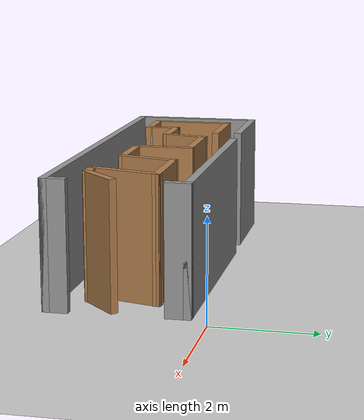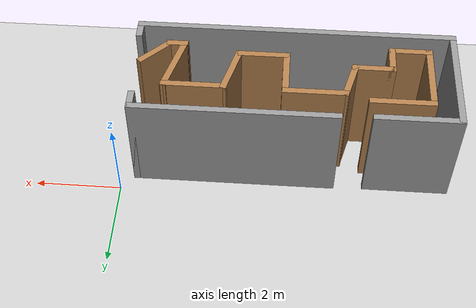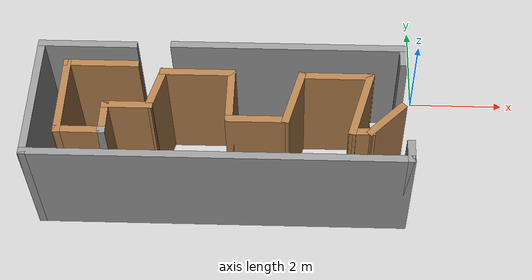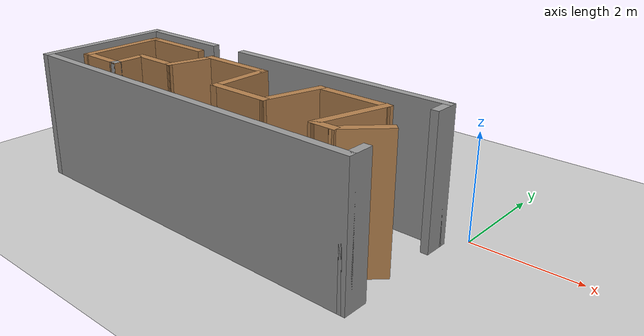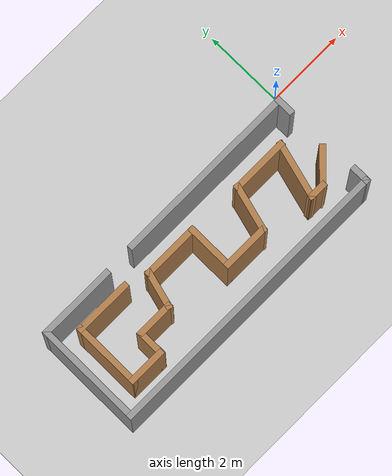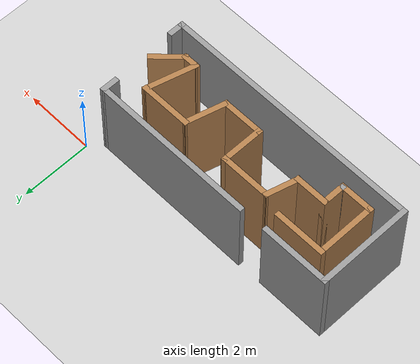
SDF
<sdf version="1.7">
 <world name="default">
  <light name="sun" type="directional">
   <pose>0 0 10 0 -0 0</pose>
   <diffuse>0.8 0.8 0.8 1</diffuse>
   <specular>0.2 0.2 0.2 1</specular>
   <attenuation>
    <range>1000</range>
    <constant>0.9</constant>
    <linear>0.01</linear>
    <quadratic>0.001</quadratic>
   </attenuation>
   <direction>-0.5 0.1 -0.9</direction>
   <spot><inner_angle>0</inner_angle><outer_angle>0</outer_angle><falloff>0</falloff></spot>
  </light>
  <model name="ground_plane">
   <static>1</static>
   <link name="link">
    <collision name="collision">
     <geometry><plane><normal>0 0 1</normal><size>100 100</size></plane></geometry>
     <surface>
      <contact><collide_bitmask>65535</collide_bitmask></contact>
      <friction><ode><mu>100</mu><mu2>50</mu2></ode></friction>
     </surface>
    </collision>
    <visual name="visual">
     <cast_shadows>0</cast_shadows>
     <geometry><plane><normal>0 0 1</normal><size>100 100</size></plane></geometry>
     <material>
      <script><uri>file://media/materials/scripts/gazebo.material</uri><name>Gazebo/Grey</name></script>
     </material>
    </visual>
   </link>
  </model>
  <gravity>0 0 -9.8</gravity>
  <magnetic_field>6e-06 2.3e-05 -4.2e-05</magnetic_field>
  <atmosphere type="adiabatic"/>
  <physics type="ode">
   <max_step_size>0.001</max_step_size>
   <real_time_factor>1</real_time_factor>
   <real_time_update_rate>1000</real_time_update_rate>
  </physics>
  <scene><ambient>0.4 0.4 0.4 1</ambient><background>0.7 0.7 0.7 1</background><shadows>1</shadows></scene>
  <audio><device>default</device></audio>
  <spherical_coordinates>
   <surface_model>EARTH_WGS84</surface_model>
   <latitude_deg>0</latitude_deg>
   <longitude_deg>0</longitude_deg>
   <elevation>0</elevation>
   <heading_deg>0</heading_deg>
  </spherical_coordinates>
  <model name="Untitled">
   <pose>-3.8525 -1.5575 0 0 -0 0</pose>
   <link name="Wall_0">
    <collision name="Wall_0_Collision">
     <geometry><box><size>4.75 0.15 2.5</size></box></geometry>
     <pose>0 0 1.25 0 -0 0</pose>
    </collision>
    <visual name="Wall_0_Visual">
     <pose>0 0 1.25 0 -0 0</pose>
     <geometry><box><size>4.75 0.15 2.5</size></box></geometry>
     <material>
      <script><uri>file://media/materials/scripts/gazebo.material</uri><name>Gazebo/Grey</name></script>
      <ambient>1 1 1 1</ambient>
     </material>
     <meta><layer>0</layer></meta>
    </visual>
    <pose>1.1925 1.1475 0 0 -0 0</pose>
   </link>
   <link name="Wall_1">
    <collision name="Wall_1_Collision">
     <geometry><box><size>0.5 0.15 2.5</size></box></geometry>
     <pose>0 0 1.25 0 -0 0</pose>
    </collision>
    <visual name="Wall_1_Visual">
     <pose>0 0 1.25 0 -0 0</pose>
     <geometry><box><size>0.5 0.15 2.5</size></box></geometry>
     <material>
      <script><uri>file://media/materials/scripts/gazebo.material</uri><name>Gazebo/Grey</name></script>
      <ambient>1 1 1 1</ambient>
     </material>
     <meta><layer>0</layer></meta>
    </visual>
    <pose>3.4925 0.9725 0 0 -0 -1.5708</pose>
   </link>
   <link name="Wall_10">
    <collision name="Wall_10_Collision">
     <geometry><box><size>1 0.15 2.5</size></box></geometry>
     <pose>0 0 1.25 0 -0 0</pose>
    </collision>
    <visual name="Wall_10_Visual">
     <pose>0 0 1.25 0 -0 0</pose>
     <geometry><box><size>1 0.15 2.5</size></box></geometry>
     <material>
      <script><uri>file://media/materials/scripts/gazebo.material</uri><name>Gazebo/Wood</name></script>
      <ambient>1 1 1 1</ambient>
     </material>
     <meta><layer>0</layer></meta>
    </visual>
    <pose>-2.7725 -0.9625 0 0 -0 0</pose>
   </link>
   <link name="Wall_11">
    <collision name="Wall_11_Collision">
     <geometry><box><size>0.16 0.15 2.5</size></box></geometry>
     <pose>0 0 1.25 0 -0 0</pose>
    </collision>
    <visual name="Wall_11_Visual">
     <pose>0 0 1.25 0 -0 0</pose>
     <geometry><box><size>0.16 0.15 2.5</size></box></geometry>
     <material>
      <script><uri>file://media/materials/scripts/gazebo.material</uri><name>Gazebo/Grey</name></script>
      <ambient>1 1 1 1</ambient>
     </material>
     <meta><layer>0</layer></meta>
    </visual>
    <pose>-2.3425 -0.9625 0 0 -0 0</pose>
   </link>
   <link name="Wall_12">
    <collision name="Wall_12_Collision">
     <geometry><box><size>0.75 0.15 2.5</size></box></geometry>
     <pose>0 0 1.25 0 -0 0</pose>
    </collision>
    <visual name="Wall_12_Visual">
     <pose>0 0 1.25 0 -0 0</pose>
     <geometry><box><size>0.75 0.15 2.5</size></box></geometry>
     <material>
      <script><uri>file://media/materials/scripts/gazebo.material</uri><name>Gazebo/Wood</name></script>
      <ambient>1 1 1 1</ambient>
     </material>
     <meta><layer>0</layer></meta>
    </visual>
    <pose>-2.3375 -0.6625 0 0 -0 1.5708</pose>
   </link>
   <link name="Wall_13">
    <collision name="Wall_13_Collision">
     <geometry><box><size>1 0.15 2.5</size></box></geometry>
     <pose>0 0 1.25 0 -0 0</pose>
    </collision>
    <visual name="Wall_13_Visual">
     <pose>0 0 1.25 0 -0 0</pose>
     <geometry><box><size>1 0.15 2.5</size></box></geometry>
     <material>
      <script><uri>file://media/materials/scripts/gazebo.material</uri><name>Gazebo/Wood</name></script>
      <ambient>1 1 1 1</ambient>
     </material>
     <meta><layer>0</layer></meta>
    </visual>
    <pose>-1.9125 -0.3625 0 0 -0 0</pose>
   </link>
   <link name="Wall_14">
    <collision name="Wall_14_Collision">
     <geometry><box><size>1 0.15 2.5</size></box></geometry>
     <pose>0 0 1.25 0 -0 0</pose>
    </collision>
    <visual name="Wall_14_Visual">
     <pose>0 0 1.25 0 -0 0</pose>
     <geometry><box><size>1 0.15 2.5</size></box></geometry>
     <material>
      <script><uri>file://media/materials/scripts/gazebo.material</uri><name>Gazebo/Wood</name></script>
      <ambient>1 1 1 1</ambient>
     </material>
     <meta><layer>0</layer></meta>
    </visual>
    <pose>-1.3775 0.048019 0 0 -0 1.309</pose>
   </link>
   <link name="Wall_15">
    <collision name="Wall_15_Collision">
     <geometry><box><size>1.5 0.15 2.5</size></box></geometry>
     <pose>0 0 1.25 0 -0 0</pose>
    </collision>
    <visual name="Wall_15_Visual">
     <pose>0 0 1.25 0 -0 0</pose>
     <geometry><box><size>1.5 0.15 2.5</size></box></geometry>
     <material>
      <script><uri>file://media/materials/scripts/gazebo.material</uri><name>Gazebo/Wood</name></script>
      <ambient>1 1 1 1</ambient>
     </material>
     <meta><layer>0</layer></meta>
    </visual>
    <pose>-0.592504 0.458537 0 0 -0 0</pose>
   </link>
   <link name="Wall_16">
    <collision name="Wall_16_Collision">
     <geometry><box><size>1.25 0.15 2.5</size></box></geometry>
     <pose>0 0 1.25 0 -0 0</pose>
    </collision>
    <visual name="Wall_16_Visual">
     <pose>0 0 1.25 0 -0 0</pose>
     <geometry><box><size>1.25 0.15 2.5</size></box></geometry>
     <material>
      <script><uri>file://media/materials/scripts/gazebo.material</uri><name>Gazebo/Wood</name></script>
      <ambient>1 1 1 1</ambient>
     </material>
     <meta><layer>0</layer></meta>
    </visual>
    <pose>0.082496 -0.091463 0 0 -0 -1.5708</pose>
   </link>
   <link name="Wall_17">
    <collision name="Wall_17_Collision">
     <geometry><box><size>1.25 0.15 2.5</size></box></geometry>
     <pose>0 0 1.25 0 -0 0</pose>
    </collision>
    <visual name="Wall_17_Visual">
     <pose>0 0 1.25 0 -0 0</pose>
     <geometry><box><size>1.25 0.15 2.5</size></box></geometry>
     <material>
      <script><uri>file://media/materials/scripts/gazebo.material</uri><name>Gazebo/Wood</name></script>
      <ambient>1 1 1 1</ambient>
     </material>
     <meta><layer>0</layer></meta>
    </visual>
    <pose>0.632496 -0.641463 0 0 -0 0</pose>
   </link>
   <link name="Wall_18">
    <collision name="Wall_18_Collision">
     <geometry><box><size>1.25 0.15 2.5</size></box></geometry>
     <pose>0 0 1.25 0 -0 0</pose>
    </collision>
    <visual name="Wall_18_Visual">
     <pose>0 0 1.25 0 -0 0</pose>
     <geometry><box><size>1.25 0.15 2.5</size></box></geometry>
     <material>
      <script><uri>file://media/materials/scripts/gazebo.material</uri><name>Gazebo/Wood</name></script>
      <ambient>1 1 1 1</ambient>
     </material>
     <meta><layer>0</layer></meta>
    </visual>
    <pose>1.32485 -0.110204 0 0 -0 1.309</pose>
   </link>
   <link name="Wall_19">
    <collision name="Wall_19_Collision">
     <geometry><box><size>1.5 0.15 2.5</size></box></geometry>
     <pose>0 0 1.25 0 -0 0</pose>
    </collision>
    <visual name="Wall_19_Visual">
     <pose>0 0 1.25 0 -0 0</pose>
     <geometry><box><size>1.5 0.15 2.5</size></box></geometry>
     <material>
      <script><uri>file://media/materials/scripts/gazebo.material</uri><name>Gazebo/Wood</name></script>
      <ambient>1 1 1 1</ambient>
     </material>
     <meta><layer>0</layer></meta>
    </visual>
    <pose>2.1422 0.421055 0 0 -0 0</pose>
   </link>
   <link name="Wall_20">
    <collision name="Wall_20_Collision">
     <geometry><box><size>1.5 0.15 2.5</size></box></geometry>
     <pose>0 0 1.25 0 -0 0</pose>
    </collision>
    <visual name="Wall_20_Visual">
     <pose>0 0 1.25 0 -0 0</pose>
     <geometry><box><size>1.5 0.15 2.5</size></box></geometry>
     <material>
      <script><uri>file://media/materials/scripts/gazebo.material</uri><name>Gazebo/Wood</name></script>
      <ambient>1 1 1 1</ambient>
     </material>
     <meta><layer>0</layer></meta>
    </visual>
    <pose>2.64249 -0.230944 0 0 -0 -1.8326</pose>
   </link>
   <link name="Wall_21">
    <collision name="Wall_21_Collision">
     <geometry><box><size>0.5 0.15 2.5</size></box></geometry>
     <pose>0 0 1.25 0 -0 0</pose>
    </collision>
    <visual name="Wall_21_Visual">
     <pose>0 0 1.25 0 -0 0</pose>
     <geometry><box><size>0.5 0.15 2.5</size></box></geometry>
     <material>
      <script><uri>file://media/materials/scripts/gazebo.material</uri><name>Gazebo/Wood</name></script>
      <ambient>1 1 1 1</ambient>
     </material>
     <meta><layer>0</layer></meta>
    </visual>
    <pose>2.64279 -0.882944 0 0 -0 0</pose>
   </link>
   <link name="Wall_22">
    <collision name="Wall_22_Collision">
     <geometry><box><size>1 0.15 2.5</size></box></geometry>
     <pose>0 0 1.25 0 -0 0</pose>
    </collision>
    <visual name="Wall_22_Visual">
     <pose>0 0 1.25 0 -0 0</pose>
     <geometry><box><size>1 0.15 2.5</size></box></geometry>
     <material>
      <script><uri>file://media/materials/scripts/gazebo.material</uri><name>Gazebo/Wood</name></script>
      <ambient>1 1 1 1</ambient>
     </material>
     <meta><layer>0</layer></meta>
    </visual>
    <pose>3.11831 -0.582424 0 0 -0 0.785398</pose>
   </link>
   <link name="Wall_3">
    <collision name="Wall_3_Collision">
     <geometry><box><size>2 0.15 2.5</size></box></geometry>
     <pose>0 0 1.25 0 -0 0</pose>
    </collision>
    <visual name="Wall_3_Visual">
     <pose>0 0 1.25 0 -0 0</pose>
     <geometry><box><size>2 0.15 2.5</size></box></geometry>
     <material>
      <script><uri>file://media/materials/scripts/gazebo.material</uri><name>Gazebo/Grey</name></script>
      <ambient>1 1 1 1</ambient>
     </material>
     <meta><layer>0</layer></meta>
    </visual>
    <pose>-2.8525 1.1175 0 0 -0 3.14159</pose>
   </link>
   <link name="Wall_4">
    <collision name="Wall_4_Collision">
     <geometry><box><size>2.75 0.15 2.5</size></box></geometry>
     <pose>0 0 1.25 0 -0 0</pose>
    </collision>
    <visual name="Wall_4_Visual">
     <pose>0 0 1.25 0 -0 0</pose>
     <geometry><box><size>2.75 0.15 2.5</size></box></geometry>
     <material>
      <script><uri>file://media/materials/scripts/gazebo.material</uri><name>Gazebo/Grey</name></script>
      <ambient>1 1 1 1</ambient>
     </material>
     <meta><layer>0</layer></meta>
    </visual>
    <pose>-3.7775 -0.1825 0 0 -0 -1.5708</pose>
   </link>
   <link name="Wall_5">
    <collision name="Wall_5_Collision">
     <geometry><box><size>7.5 0.15 2.5</size></box></geometry>
     <pose>0 0 1.25 0 -0 0</pose>
    </collision>
    <visual name="Wall_5_Visual">
     <pose>0 0 1.25 0 -0 0</pose>
     <geometry><box><size>7.5 0.15 2.5</size></box></geometry>
     <material>
      <script><uri>file://media/materials/scripts/gazebo.material</uri><name>Gazebo/Grey</name></script>
      <ambient>1 1 1 1</ambient>
     </material>
     <meta><layer>0</layer></meta>
    </visual>
    <pose>-0.1025 -1.4825 0 0 -0 0</pose>
   </link>
   <link name="Wall_6">
    <collision name="Wall_6_Collision">
     <geometry><box><size>0.5 0.15 2.5</size></box></geometry>
     <pose>0 0 1.25 0 -0 0</pose>
    </collision>
    <visual name="Wall_6_Visual">
     <pose>0 0 1.25 0 -0 0</pose>
     <geometry><box><size>0.5 0.15 2.5</size></box></geometry>
     <material>
      <script><uri>file://media/materials/scripts/gazebo.material</uri><name>Gazebo/Grey</name></script>
      <ambient>1 1 1 1</ambient>
     </material>
     <meta><layer>0</layer></meta>
    </visual>
    <pose>3.5725 -1.3075 0 0 -0 1.5708</pose>
   </link>
   <link name="Wall_8">
    <collision name="Wall_8_Collision">
     <geometry><box><size>1.5 0.15 2.5</size></box></geometry>
     <pose>0 0 1.25 0 -0 0</pose>
    </collision>
    <visual name="Wall_8_Visual">
     <pose>0 0 1.25 0 -0 0</pose>
     <geometry><box><size>1.5 0.15 2.5</size></box></geometry>
     <material>
      <script><uri>file://media/materials/scripts/gazebo.material</uri><name>Gazebo/Wood</name></script>
      <ambient>1 1 1 1</ambient>
     </material>
     <meta><layer>0</layer></meta>
    </visual>
    <pose>-2.5225 0.6375 0 0 -0 3.14159</pose>
   </link>
   <link name="Wall_9">
    <collision name="Wall_9_Collision">
     <geometry><box><size>1.75 0.15 2.5</size></box></geometry>
     <pose>0 0 1.25 0 -0 0</pose>
    </collision>
    <visual name="Wall_9_Visual">
     <pose>0 0 1.25 0 -0 0</pose>
     <geometry><box><size>1.75 0.15 2.5</size></box></geometry>
     <material>
      <script><uri>file://media/materials/scripts/gazebo.material</uri><name>Gazebo/Wood</name></script>
      <ambient>1 1 1 1</ambient>
     </material>
     <meta><layer>0</layer></meta>
    </visual>
    <pose>-3.1975 -0.1625 0 0 -0 -1.5708</pose>
   </link>
   <static>1</static>
  </model>
 </world>
</sdf>
